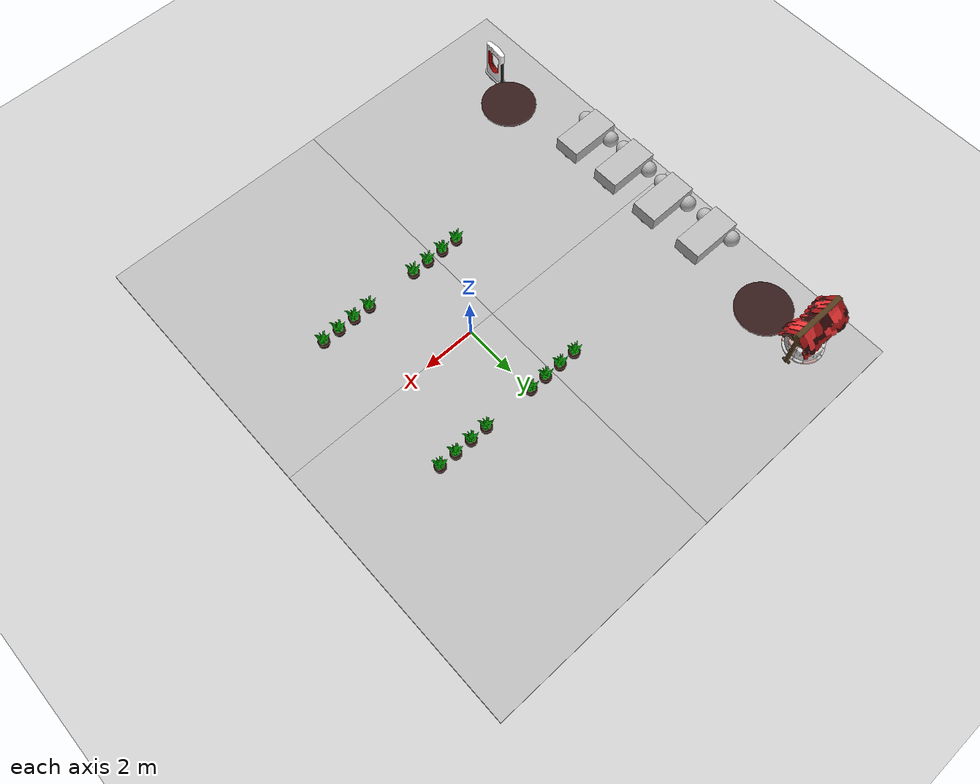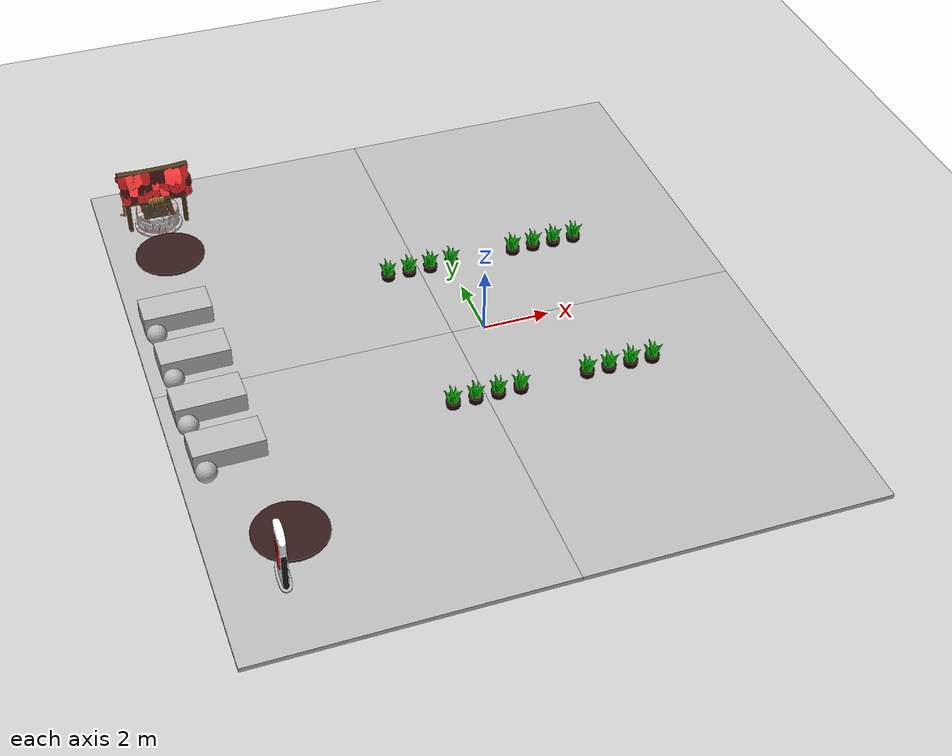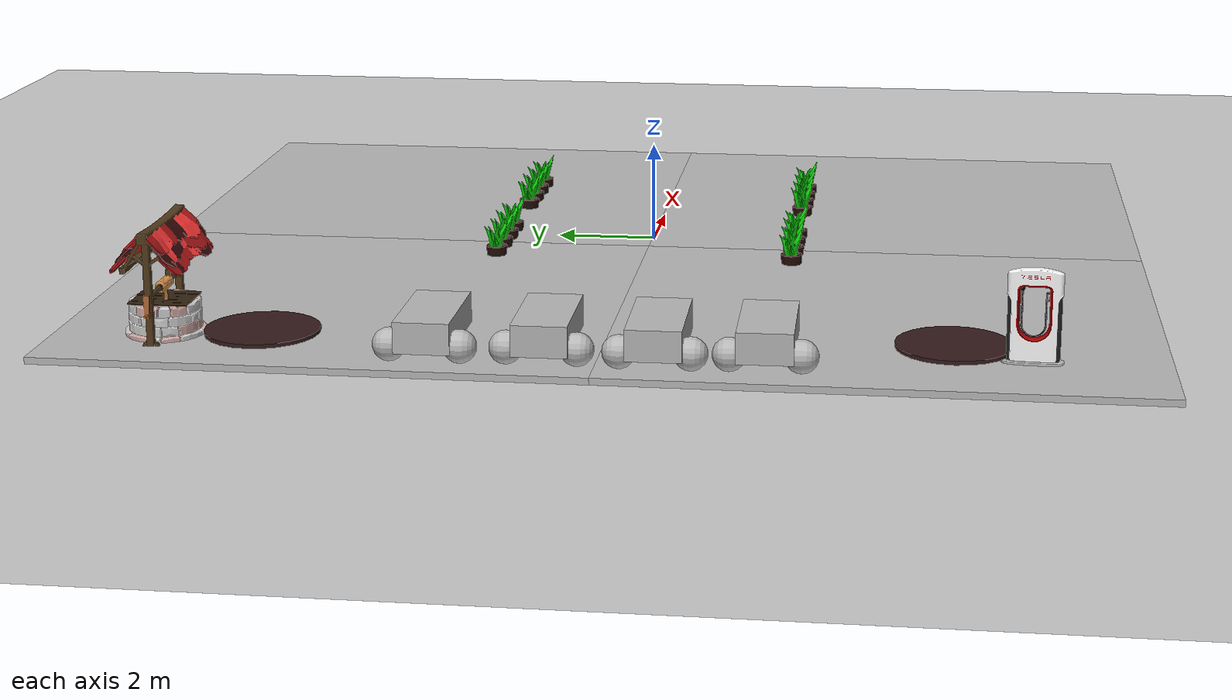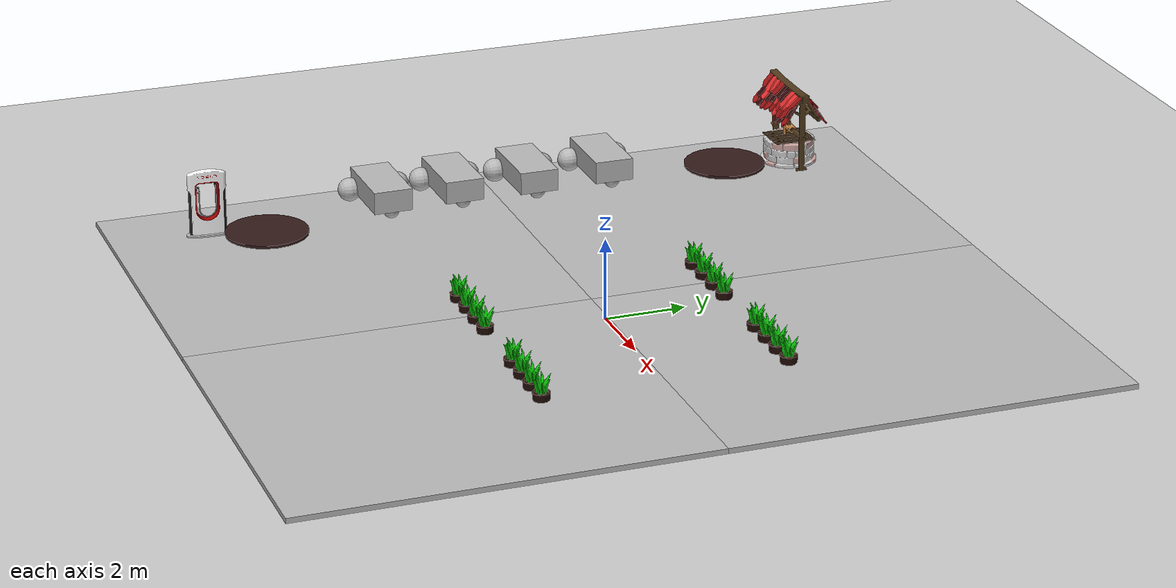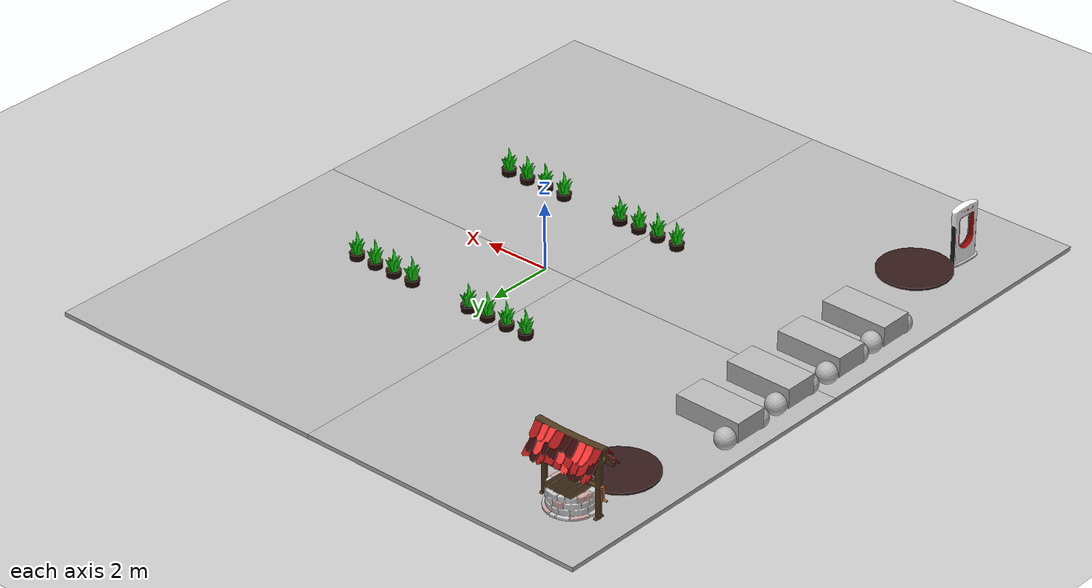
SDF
<sdf version="1.7">
 <world name="default">
  <model name="robot">
   <pose>-8.62766 2.96862 0.418664 0 0.006612 3.13792</pose>
   <link name="base_link">
    <pose>-0.151427 -0 0.175 0 -0 0</pose>
    <inertial>
     <mass>1.14395</mass>
     <inertia>
      <ixx>0.126164</ixx>
      <ixy>0</ixy>
      <ixz>0</ixz>
      <iyy>0.416519</iyy>
      <iyz>0</iyz>
      <izz>0.481014</izz>
     </inertia>
    </inertial>
    <visual name="visual"><geometry><box><size>2.01142 1 0.568726</size></box></geometry></visual>
    <collision name="collision"><geometry><box><size>2.01142 1 0.568726</size></box></geometry></collision>
   </link>
   <link name="left_wheel">
    <pose>0.554283 0.625029 -0.025 -1.5707 0 0</pose>
    <inertial>
     <mass>2</mass>
     <inertia><ixx>0.145833</ixx><ixy>0</ixy><ixz>0</ixz><iyy>0.145833</iyy><iyz>0</iyz><izz>0.125</izz></inertia>
    </inertial>
    <visual name="visual"><geometry><sphere><radius>0.3</radius></sphere></geometry></visual>
    <collision name="collision">
     <geometry><sphere><radius>0.3</radius></sphere></geometry>
     <surface>
      <friction><ode><mu>1</mu><mu2>1</mu2><slip1>0</slip1><slip2>0</slip2></ode></friction>
      <contact>
       <ode>
        <soft_cfm>0</soft_cfm>
        <soft_erp>0.2</soft_erp>
        <kp>1e+13</kp>
        <kd>1</kd>
        <max_vel>0.01</max_vel>
        <min_depth>0.01</min_depth>
       </ode>
      </contact>
     </surface>
    </collision>
   </link>
   <link name="right_wheel">
    <pose>0.554282 -0.625029 -0.025 -1.5707 0 0</pose>
    <inertial>
     <mass>2</mass>
     <inertia><ixx>0.145833</ixx><ixy>0</ixy><ixz>0</ixz><iyy>0.145833</iyy><iyz>0</iyz><izz>0.125</izz></inertia>
    </inertial>
    <visual name="visual"><geometry><sphere><radius>0.3</radius></sphere></geometry></visual>
    <collision name="collision">
     <geometry><sphere><radius>0.3</radius></sphere></geometry>
     <surface>
      <friction><ode><mu>1</mu><mu2>1</mu2><slip1>0</slip1><slip2>0</slip2></ode></friction>
      <contact>
       <ode>
        <soft_cfm>0</soft_cfm>
        <soft_erp>0.2</soft_erp>
        <kp>1e+13</kp>
        <kd>1</kd>
        <max_vel>0.01</max_vel>
        <min_depth>0.01</min_depth>
       </ode>
      </contact>
     </surface>
    </collision>
   </link>
   <link name="caster">
    <pose>-0.957138 -0 -0.125 0 -0 0</pose>
    <inertial>
     <mass>1</mass>
     <inertia><ixx>0.1</ixx><ixy>0</ixy><ixz>0</ixz><iyy>0.1</iyy><iyz>0</iyz><izz>0.1</izz></inertia>
    </inertial>
    <visual name="visual"><geometry><sphere><radius>0.2</radius></sphere></geometry></visual>
    <collision name="collision"><geometry><sphere><radius>0.2</radius></sphere></geometry></collision>
   </link>
   <joint name="left_wheel_joint" type="revolute">
    <parent>base_link</parent>
    <child>left_wheel</child>
    <axis>
     <xyz>0 0 1</xyz>
     <limit><lower>-1.79769e+308</lower><upper>1.79769e+308</upper></limit>
     <dynamics><spring_reference>0</spring_reference><spring_stiffness>0</spring_stiffness></dynamics>
    </axis>
   </joint>
   <joint name="right_wheel_joint" type="revolute">
    <parent>base_link</parent>
    <child>right_wheel</child>
    <axis>
     <xyz>0 0 1</xyz>
     <limit><lower>-1.79769e+308</lower><upper>1.79769e+308</upper></limit>
     <dynamics><spring_reference>0</spring_reference><spring_stiffness>0</spring_stiffness></dynamics>
    </axis>
   </joint>
   <joint name="caster_wheel" type="ball"><parent>base_link</parent><child>caster</child></joint>
   <plugin name="gazebo_ros_diff_drive" filename="libgazebo_ros_diff_drive.so">
    <ros><namespace>/</namespace><remapping>odom:=odom</remapping></ros>
    <publishOdomTf>1</publishOdomTf>
    <commandTopic>cmd_vel</commandTopic>
    <odometryTopic>odom</odometryTopic>
    <odometrySource>WORLD</odometrySource>
    <publish_odom>1</publish_odom>
    <robotBaseFrame>base_link</robotBaseFrame>
    <left_joint>left_wheel_joint</left_joint>
    <right_joint>right_wheel_joint</right_joint>
   </plugin>
  </model>
  <model name="robot2">
   <pose>-8.56768 0.922478 0.418666 0 0.006615 -3.13722</pose>
   <link name="base_link">
    <pose>-0.151427 -0 0.175 0 -0 0</pose>
    <inertial>
     <mass>1.14395</mass>
     <inertia>
      <ixx>0.126164</ixx>
      <ixy>0</ixy>
      <ixz>0</ixz>
      <iyy>0.416519</iyy>
      <iyz>0</iyz>
      <izz>0.481014</izz>
     </inertia>
    </inertial>
    <visual name="visual"><geometry><box><size>2.01142 1 0.568726</size></box></geometry></visual>
    <collision name="collision"><geometry><box><size>2.01142 1 0.568726</size></box></geometry></collision>
   </link>
   <link name="left_wheel">
    <pose>0.554283 0.625029 -0.025 -1.5707 0 0</pose>
    <inertial>
     <mass>2</mass>
     <inertia><ixx>0.145833</ixx><ixy>0</ixy><ixz>0</ixz><iyy>0.145833</iyy><iyz>0</iyz><izz>0.125</izz></inertia>
    </inertial>
    <visual name="visual"><geometry><sphere><radius>0.3</radius></sphere></geometry></visual>
    <collision name="collision">
     <geometry><sphere><radius>0.3</radius></sphere></geometry>
     <surface>
      <friction><ode><mu>1</mu><mu2>1</mu2><slip1>0</slip1><slip2>0</slip2></ode></friction>
      <contact>
       <ode>
        <soft_cfm>0</soft_cfm>
        <soft_erp>0.2</soft_erp>
        <kp>1e+13</kp>
        <kd>1</kd>
        <max_vel>0.01</max_vel>
        <min_depth>0.01</min_depth>
       </ode>
      </contact>
     </surface>
    </collision>
   </link>
   <link name="right_wheel">
    <pose>0.554282 -0.625029 -0.025 -1.5707 0 0</pose>
    <inertial>
     <mass>2</mass>
     <inertia><ixx>0.145833</ixx><ixy>0</ixy><ixz>0</ixz><iyy>0.145833</iyy><iyz>0</iyz><izz>0.125</izz></inertia>
    </inertial>
    <visual name="visual"><geometry><sphere><radius>0.3</radius></sphere></geometry></visual>
    <collision name="collision">
     <geometry><sphere><radius>0.3</radius></sphere></geometry>
     <surface>
      <friction><ode><mu>1</mu><mu2>1</mu2><slip1>0</slip1><slip2>0</slip2></ode></friction>
      <contact>
       <ode>
        <soft_cfm>0</soft_cfm>
        <soft_erp>0.2</soft_erp>
        <kp>1e+13</kp>
        <kd>1</kd>
        <max_vel>0.01</max_vel>
        <min_depth>0.01</min_depth>
       </ode>
      </contact>
     </surface>
    </collision>
   </link>
   <link name="caster">
    <pose>-0.957138 -0 -0.125 0 -0 0</pose>
    <inertial>
     <mass>1</mass>
     <inertia><ixx>0.1</ixx><ixy>0</ixy><ixz>0</ixz><iyy>0.1</iyy><iyz>0</iyz><izz>0.1</izz></inertia>
    </inertial>
    <visual name="visual"><geometry><sphere><radius>0.2</radius></sphere></geometry></visual>
    <collision name="collision"><geometry><sphere><radius>0.2</radius></sphere></geometry></collision>
   </link>
   <joint name="left_wheel_joint" type="revolute">
    <parent>base_link</parent>
    <child>left_wheel</child>
    <axis>
     <xyz>0 0 1</xyz>
     <limit><lower>-1.79769e+308</lower><upper>1.79769e+308</upper></limit>
     <dynamics><spring_reference>0</spring_reference><spring_stiffness>0</spring_stiffness></dynamics>
    </axis>
   </joint>
   <joint name="right_wheel_joint" type="revolute">
    <parent>base_link</parent>
    <child>right_wheel</child>
    <axis>
     <xyz>0 0 1</xyz>
     <limit><lower>-1.79769e+308</lower><upper>1.79769e+308</upper></limit>
     <dynamics><spring_reference>0</spring_reference><spring_stiffness>0</spring_stiffness></dynamics>
    </axis>
   </joint>
   <joint name="caster_wheel" type="ball"><parent>base_link</parent><child>caster</child></joint>
  </model>
  <model name="robot3">
   <pose>-8.59963 -1.05763 0.418666 0 0.006615 -3.13037</pose>
   <link name="base_link">
    <pose>-0.151427 -0 0.175 0 -0 0</pose>
    <inertial>
     <mass>1.14395</mass>
     <inertia>
      <ixx>0.126164</ixx>
      <ixy>0</ixy>
      <ixz>0</ixz>
      <iyy>0.416519</iyy>
      <iyz>0</iyz>
      <izz>0.481014</izz>
     </inertia>
    </inertial>
    <visual name="visual"><geometry><box><size>2.01142 1 0.568726</size></box></geometry></visual>
    <collision name="collision"><geometry><box><size>2.01142 1 0.568726</size></box></geometry></collision>
   </link>
   <link name="left_wheel">
    <pose>0.554283 0.625029 -0.025 -1.5707 0 0</pose>
    <inertial>
     <mass>2</mass>
     <inertia><ixx>0.145833</ixx><ixy>0</ixy><ixz>0</ixz><iyy>0.145833</iyy><iyz>0</iyz><izz>0.125</izz></inertia>
    </inertial>
    <visual name="visual"><geometry><sphere><radius>0.3</radius></sphere></geometry></visual>
    <collision name="collision">
     <geometry><sphere><radius>0.3</radius></sphere></geometry>
     <surface>
      <friction><ode><mu>1</mu><mu2>1</mu2><slip1>0</slip1><slip2>0</slip2></ode></friction>
      <contact>
       <ode>
        <soft_cfm>0</soft_cfm>
        <soft_erp>0.2</soft_erp>
        <kp>1e+13</kp>
        <kd>1</kd>
        <max_vel>0.01</max_vel>
        <min_depth>0.01</min_depth>
       </ode>
      </contact>
     </surface>
    </collision>
   </link>
   <link name="right_wheel">
    <pose>0.554282 -0.625029 -0.025 -1.5707 0 0</pose>
    <inertial>
     <mass>2</mass>
     <inertia><ixx>0.145833</ixx><ixy>0</ixy><ixz>0</ixz><iyy>0.145833</iyy><iyz>0</iyz><izz>0.125</izz></inertia>
    </inertial>
    <visual name="visual"><geometry><sphere><radius>0.3</radius></sphere></geometry></visual>
    <collision name="collision">
     <geometry><sphere><radius>0.3</radius></sphere></geometry>
     <surface>
      <friction><ode><mu>1</mu><mu2>1</mu2><slip1>0</slip1><slip2>0</slip2></ode></friction>
      <contact>
       <ode>
        <soft_cfm>0</soft_cfm>
        <soft_erp>0.2</soft_erp>
        <kp>1e+13</kp>
        <kd>1</kd>
        <max_vel>0.01</max_vel>
        <min_depth>0.01</min_depth>
       </ode>
      </contact>
     </surface>
    </collision>
   </link>
   <link name="caster">
    <pose>-0.957138 -0 -0.125 0 -0 0</pose>
    <inertial>
     <mass>1</mass>
     <inertia><ixx>0.1</ixx><ixy>0</ixy><ixz>0</ixz><iyy>0.1</iyy><iyz>0</iyz><izz>0.1</izz></inertia>
    </inertial>
    <visual name="visual"><geometry><sphere><radius>0.2</radius></sphere></geometry></visual>
    <collision name="collision"><geometry><sphere><radius>0.2</radius></sphere></geometry></collision>
   </link>
   <joint name="left_wheel_joint" type="revolute">
    <parent>base_link</parent>
    <child>left_wheel</child>
    <axis>
     <xyz>0 0 1</xyz>
     <limit><lower>-1.79769e+308</lower><upper>1.79769e+308</upper></limit>
     <dynamics><spring_reference>0</spring_reference><spring_stiffness>0</spring_stiffness></dynamics>
    </axis>
   </joint>
   <joint name="right_wheel_joint" type="revolute">
    <parent>base_link</parent>
    <child>right_wheel</child>
    <axis>
     <xyz>0 0 1</xyz>
     <limit><lower>-1.79769e+308</lower><upper>1.79769e+308</upper></limit>
     <dynamics><spring_reference>0</spring_reference><spring_stiffness>0</spring_stiffness></dynamics>
    </axis>
   </joint>
   <joint name="caster_wheel" type="ball"><parent>base_link</parent><child>caster</child></joint>
  </model>
  <model name="robot4">
   <pose>-8.5302 -2.96425 0.418666 0 0.006615 -3.13002</pose>
   <link name="base_link">
    <pose>-0.151427 -0 0.175 0 -0 0</pose>
    <inertial>
     <mass>1.14395</mass>
     <inertia>
      <ixx>0.126164</ixx>
      <ixy>0</ixy>
      <ixz>0</ixz>
      <iyy>0.416519</iyy>
      <iyz>0</iyz>
      <izz>0.481014</izz>
     </inertia>
    </inertial>
    <visual name="visual"><geometry><box><size>2.01142 1 0.568726</size></box></geometry></visual>
    <collision name="collision"><geometry><box><size>2.01142 1 0.568726</size></box></geometry></collision>
   </link>
   <link name="left_wheel">
    <pose>0.554283 0.625029 -0.025 -1.5707 0 0</pose>
    <inertial>
     <mass>2</mass>
     <inertia><ixx>0.145833</ixx><ixy>0</ixy><ixz>0</ixz><iyy>0.145833</iyy><iyz>0</iyz><izz>0.125</izz></inertia>
    </inertial>
    <visual name="visual"><geometry><sphere><radius>0.3</radius></sphere></geometry></visual>
    <collision name="collision">
     <geometry><sphere><radius>0.3</radius></sphere></geometry>
     <surface>
      <friction><ode><mu>1</mu><mu2>1</mu2><slip1>0</slip1><slip2>0</slip2></ode></friction>
      <contact>
       <ode>
        <soft_cfm>0</soft_cfm>
        <soft_erp>0.2</soft_erp>
        <kp>1e+13</kp>
        <kd>1</kd>
        <max_vel>0.01</max_vel>
        <min_depth>0.01</min_depth>
       </ode>
      </contact>
     </surface>
    </collision>
   </link>
   <link name="right_wheel">
    <pose>0.554282 -0.625029 -0.025 -1.5707 0 0</pose>
    <inertial>
     <mass>2</mass>
     <inertia><ixx>0.145833</ixx><ixy>0</ixy><ixz>0</ixz><iyy>0.145833</iyy><iyz>0</iyz><izz>0.125</izz></inertia>
    </inertial>
    <visual name="visual"><geometry><sphere><radius>0.3</radius></sphere></geometry></visual>
    <collision name="collision">
     <geometry><sphere><radius>0.3</radius></sphere></geometry>
     <surface>
      <friction><ode><mu>1</mu><mu2>1</mu2><slip1>0</slip1><slip2>0</slip2></ode></friction>
      <contact>
       <ode>
        <soft_cfm>0</soft_cfm>
        <soft_erp>0.2</soft_erp>
        <kp>1e+13</kp>
        <kd>1</kd>
        <max_vel>0.01</max_vel>
        <min_depth>0.01</min_depth>
       </ode>
      </contact>
     </surface>
    </collision>
   </link>
   <link name="caster">
    <pose>-0.957138 -0 -0.125 0 -0 0</pose>
    <inertial>
     <mass>1</mass>
     <inertia><ixx>0.1</ixx><ixy>0</ixy><ixz>0</ixz><iyy>0.1</iyy><iyz>0</iyz><izz>0.1</izz></inertia>
    </inertial>
    <visual name="visual"><geometry><sphere><radius>0.2</radius></sphere></geometry></visual>
    <collision name="collision"><geometry><sphere><radius>0.2</radius></sphere></geometry></collision>
   </link>
   <joint name="left_wheel_joint" type="revolute">
    <parent>base_link</parent>
    <child>left_wheel</child>
    <axis>
     <xyz>0 0 1</xyz>
     <limit><lower>-1.79769e+308</lower><upper>1.79769e+308</upper></limit>
     <dynamics><spring_reference>0</spring_reference><spring_stiffness>0</spring_stiffness></dynamics>
    </axis>
   </joint>
   <joint name="right_wheel_joint" type="revolute">
    <parent>base_link</parent>
    <child>right_wheel</child>
    <axis>
     <xyz>0 0 1</xyz>
     <limit><lower>-1.79769e+308</lower><upper>1.79769e+308</upper></limit>
     <dynamics><spring_reference>0</spring_reference><spring_stiffness>0</spring_stiffness></dynamics>
    </axis>
   </joint>
   <joint name="caster_wheel" type="ball"><parent>base_link</parent><child>caster</child></joint>
  </model>
  <model name="ground_plane">
   <static>1</static>
   <link name="link">
    <collision name="collision">
     <geometry><plane><normal>0 0 1</normal><size>100 100</size></plane></geometry>
     <surface><friction><ode><mu>100</mu><mu2>50</mu2></ode></friction></surface>
    </collision>
    <visual name="visual">
     <cast_shadows>0</cast_shadows>
     <geometry><plane><normal>0 0 1</normal><size>100 100</size></plane></geometry>
     <material>
      <script><uri>file://media/materials/scripts/gazebo.material</uri><name>Gazebo/Grey</name></script>
     </material>
    </visual>
   </link>
  </model>
  <light name="sun" type="directional">
   <pose>0 0 10 0 -0 0</pose>
   <diffuse>0.8 0.8 0.8 1</diffuse>
   <specular>0.2 0.2 0.2 1</specular>
   <attenuation>
    <range>1000</range>
    <constant>0.9</constant>
    <linear>0.01</linear>
    <quadratic>0.001</quadratic>
   </attenuation>
   <direction>-0.5 0.1 -0.9</direction>
   <spot><inner_angle>0</inner_angle><outer_angle>0</outer_angle><falloff>0</falloff></spot>
  </light>
  <gravity>0 0 -9.8</gravity>
  <magnetic_field>6e-06 2.3e-05 -4.2e-05</magnetic_field>
  <atmosphere type="adiabatic"/>
  <physics type="ode">
   <max_step_size>0.001</max_step_size>
   <real_time_factor>1</real_time_factor>
   <real_time_update_rate>1000</real_time_update_rate>
  </physics>
  <scene><ambient>0.4 0.4 0.4 1</ambient><background>0.7 0.7 0.7 1</background><shadows>1</shadows></scene>
  <audio><device>default</device></audio>
  <spherical_coordinates>
   <surface_model>EARTH_WGS84</surface_model>
   <latitude_deg>0</latitude_deg>
   <longitude_deg>0</longitude_deg>
   <elevation>0</elevation>
   <heading_deg>0</heading_deg>
  </spherical_coordinates>
  <model name="plant_1A">
   <pose>-2 -3 0 0 -0 0</pose>
   <static>1</static>
   <link name="link">
    <visual name="visual">
     <geometry>
      <mesh>
       <uri>file:///home/kyshima/gazebo_ws/src/plugins/models/plants/PotPlant.dae</uri>
       <scale>0.2 0.2 0.2</scale>
      </mesh>
     </geometry>
    </visual>
   </link>
  </model>
  <model name="plant_2A">
   <pose>2 -3 0 0 -0 0</pose>
   <static>1</static>
   <link name="link">
    <visual name="visual">
     <geometry>
      <mesh>
       <uri>file:///home/kyshima/gazebo_ws/src/plugins/models/plants/PotPlant.dae</uri>
       <scale>0.2 0.2 0.2</scale>
      </mesh>
     </geometry>
    </visual>
   </link>
  </model>
  <model name="plant_3A">
   <pose>-2 3 0 0 -0 0</pose>
   <static>1</static>
   <link name="link">
    <visual name="visual">
     <geometry>
      <mesh>
       <uri>file:///home/kyshima/gazebo_ws/src/plugins/models/plants/PotPlant.dae</uri>
       <scale>0.2 0.2 0.2</scale>
      </mesh>
     </geometry>
    </visual>
   </link>
  </model>
  <model name="plant_4A">
   <pose>2 3 0 0 -0 0</pose>
   <static>1</static>
   <link name="link">
    <visual name="visual">
     <geometry>
      <mesh>
       <uri>file:///home/kyshima/gazebo_ws/src/plugins/models/plants/PotPlant.dae</uri>
       <scale>0.2 0.2 0.2</scale>
      </mesh>
     </geometry>
    </visual>
   </link>
  </model>
  <model name="plant_1B">
   <pose>-1.333 -3 0 0 -0 0</pose>
   <static>1</static>
   <link name="link">
    <visual name="visual">
     <geometry>
      <mesh>
       <uri>file:///home/kyshima/gazebo_ws/src/plugins/models/plants/PotPlant.dae</uri>
       <scale>0.2 0.2 0.2</scale>
      </mesh>
     </geometry>
    </visual>
   </link>
  </model>
  <model name="plant_2B">
   <pose>2.667 -3 0 0 -0 0</pose>
   <static>1</static>
   <link name="link">
    <visual name="visual">
     <geometry>
      <mesh>
       <uri>file:///home/kyshima/gazebo_ws/src/plugins/models/plants/PotPlant.dae</uri>
       <scale>0.2 0.2 0.2</scale>
      </mesh>
     </geometry>
    </visual>
   </link>
  </model>
  <model name="plant_3B">
   <pose>-1.333 3 0 0 -0 0</pose>
   <static>1</static>
   <link name="link">
    <visual name="visual">
     <geometry>
      <mesh>
       <uri>file:///home/kyshima/gazebo_ws/src/plugins/models/plants/PotPlant.dae</uri>
       <scale>0.2 0.2 0.2</scale>
      </mesh>
     </geometry>
    </visual>
   </link>
  </model>
  <model name="plant_4B">
   <pose>2.667 3 0 0 -0 0</pose>
   <static>1</static>
   <link name="link">
    <visual name="visual">
     <geometry>
      <mesh>
       <uri>file:///home/kyshima/gazebo_ws/src/plugins/models/plants/PotPlant.dae</uri>
       <scale>0.2 0.2 0.2</scale>
      </mesh>
     </geometry>
    </visual>
   </link>
  </model>
  <model name="plant_1C">
   <pose>-0.667 -3 0 0 -0 0</pose>
   <static>1</static>
   <link name="link">
    <visual name="visual">
     <geometry>
      <mesh>
       <uri>file:///home/kyshima/gazebo_ws/src/plugins/models/plants/PotPlant.dae</uri>
       <scale>0.2 0.2 0.2</scale>
      </mesh>
     </geometry>
    </visual>
   </link>
  </model>
  <model name="plant_2C">
   <pose>3.333 -3 0 0 -0 0</pose>
   <static>1</static>
   <link name="link">
    <visual name="visual">
     <geometry>
      <mesh>
       <uri>file:///home/kyshima/gazebo_ws/src/plugins/models/plants/PotPlant.dae</uri>
       <scale>0.2 0.2 0.2</scale>
      </mesh>
     </geometry>
    </visual>
   </link>
  </model>
  <model name="plant_3C">
   <pose>-0.667 3 0 0 -0 0</pose>
   <static>1</static>
   <link name="link">
    <visual name="visual">
     <geometry>
      <mesh>
       <uri>file:///home/kyshima/gazebo_ws/src/plugins/models/plants/PotPlant.dae</uri>
       <scale>0.2 0.2 0.2</scale>
      </mesh>
     </geometry>
    </visual>
   </link>
  </model>
  <model name="plant_4C">
   <pose>3.333 3 0 0 -0 0</pose>
   <static>1</static>
   <link name="link">
    <visual name="visual">
     <geometry>
      <mesh>
       <uri>file:///home/kyshima/gazebo_ws/src/plugins/models/plants/PotPlant.dae</uri>
       <scale>0.2 0.2 0.2</scale>
      </mesh>
     </geometry>
    </visual>
   </link>
  </model>
  <model name="plant_1D">
   <pose>0 -3 0 0 -0 0</pose>
   <static>1</static>
   <link name="link">
    <visual name="visual">
     <geometry>
      <mesh>
       <uri>file:///home/kyshima/gazebo_ws/src/plugins/models/plants/PotPlant.dae</uri>
       <scale>0.2 0.2 0.2</scale>
      </mesh>
     </geometry>
    </visual>
   </link>
  </model>
  <model name="plant_2D">
   <pose>4 -3 0 0 -0 0</pose>
   <static>1</static>
   <link name="link">
    <visual name="visual">
     <geometry>
      <mesh>
       <uri>file:///home/kyshima/gazebo_ws/src/plugins/models/plants/PotPlant.dae</uri>
       <scale>0.2 0.2 0.2</scale>
      </mesh>
     </geometry>
    </visual>
   </link>
  </model>
  <model name="plant_3D">
   <pose>0 3 0 0 -0 0</pose>
   <static>1</static>
   <link name="link">
    <visual name="visual">
     <geometry>
      <mesh>
       <uri>file:///home/kyshima/gazebo_ws/src/plugins/models/plants/PotPlant.dae</uri>
       <scale>0.2 0.2 0.2</scale>
      </mesh>
     </geometry>
    </visual>
   </link>
  </model>
  <model name="plant_4D">
   <pose>4 3 0 0 -0 0</pose>
   <static>1</static>
   <link name="link">
    <visual name="visual">
     <geometry>
      <mesh>
       <uri>file:///home/kyshima/gazebo_ws/src/plugins/models/plants/PotPlant.dae</uri>
       <scale>0.2 0.2 0.2</scale>
      </mesh>
     </geometry>
    </visual>
   </link>
  </model>
  <model name="well">
   <static>1</static>
   <link name="link">
    <visual name="visual">
     <geometry>
      <mesh>
       <uri>file:///home/kyshima/gazebo_ws/src/plugins/models/well/well.dae</uri>
       <scale>0.1 0.1 0.1</scale>
      </mesh>
     </geometry>
    </visual>
   </link>
   <pose>-8 8 0 0 -0 0</pose>
  </model>
  <model name="mud">
   <static>1</static>
   <link name="link">
    <collision name="collision"><geometry><box><size>17.6 20 0.2</size></box></geometry></collision>
    <visual name="visual_1">
     <pose>-4.4 5 0 0 -0 0</pose>
     <cast_shadows>0</cast_shadows>
     <geometry><box><size>8.8 10 0.2</size></box></geometry>
     <material>
      <script>
       <uri>model://mud_box/materials/scripts</uri>
       <uri>model://mud_box/materials/textures</uri>
       <name>vrc/mud</name>
      </script>
     </material>
    </visual>
    <visual name="visual_2">
     <pose>4.4 5 0 0 -0 0</pose>
     <cast_shadows>0</cast_shadows>
     <geometry><box><size>8.8 10 0.2</size></box></geometry>
     <material>
      <script>
       <uri>model://mud_box/materials/scripts</uri>
       <uri>model://mud_box/materials/textures</uri>
       <name>vrc/mud</name>
      </script>
     </material>
    </visual>
    <visual name="visual_3">
     <pose>4.4 -5 0 0 -0 0</pose>
     <cast_shadows>0</cast_shadows>
     <geometry><box><size>8.8 10 0.2</size></box></geometry>
     <material>
      <script>
       <uri>model://mud_box/materials/scripts</uri>
       <uri>model://mud_box/materials/textures</uri>
       <name>vrc/mud</name>
      </script>
     </material>
    </visual>
    <visual name="visual_4">
     <pose>-4.4 -5 0 0 -0 0</pose>
     <cast_shadows>0</cast_shadows>
     <geometry><box><size>8.8 10 0.2</size></box></geometry>
     <material>
      <script>
       <uri>model://mud_box/materials/scripts</uri>
       <uri>model://mud_box/materials/textures</uri>
       <name>vrc/mud</name>
      </script>
     </material>
    </visual>
   </link>
   <pose>-1 0 0 0 -0 0</pose>
  </model>
  <model name="charger">
   <static>1</static>
   <link name="link">
    <visual name="visual">
     <geometry>
      <mesh>
       <uri>file:///home/kyshima/gazebo_ws/src/plugins/models/charger2/charger.dae</uri>
       <scale>1 1 1</scale>
      </mesh>
     </geometry>
    </visual>
   </link>
   <pose>-8.2 -7 0 0 0 -1.62417</pose>
  </model>
  <model name="outroBigCilindro">
   <link name="link">
    <inertial>
     <mass>1</mass>
     <inertia><ixx>0.145833</ixx><ixy>0</ixy><ixz>0</ixz><iyy>0.145833</iyy><iyz>0</iyz><izz>0.125</izz></inertia>
    </inertial>
    <visual name="visual">
     <geometry><cylinder><radius>1.04919</radius><length>0.0737919</length></cylinder></geometry>
     <material>
      <script><name>Gazebo/Grey</name><uri>file://media/materials/scripts/gazebo.material</uri></script>
      <shader type="pixel"><normal_map>__default__</normal_map></shader>
      <ambient>0.2 0.1 0.1 1</ambient>
      <diffuse>0.2 0.1 0.1 1</diffuse>
      <specular>0.2 0.11 0.11 1</specular>
      <emissive>0.2 0.1 0.1 1</emissive>
     </material>
    </visual>
    <collision name="collision">
     <geometry><cylinder><radius>1.04919</radius><length>0.073792</length></cylinder></geometry>
     <surface>
      <friction>
       <ode><mu>1</mu><mu2>1</mu2><fdir1>0 0 0</fdir1><slip1>0</slip1><slip2>0</slip2></ode>
       <torsional>
        <coefficient>1</coefficient>
        <patch_radius>0</patch_radius>
        <surface_radius>0</surface_radius>
        <use_patch_radius>1</use_patch_radius>
        <ode><slip>0</slip></ode>
       </torsional>
      </friction>
      <bounce><restitution_coefficient>0</restitution_coefficient><threshold>1e+06</threshold></bounce>
      <contact>
       <collide_without_contact>0</collide_without_contact>
       <collide_without_contact_bitmask>1</collide_without_contact_bitmask>
       <collide_bitmask>1</collide_bitmask>
       <ode>
        <soft_cfm>0</soft_cfm>
        <soft_erp>0.2</soft_erp>
        <kp>1e+13</kp>
        <kd>1</kd>
        <max_vel>0.01</max_vel>
        <min_depth>0</min_depth>
       </ode>
       <bullet>
        <split_impulse>1</split_impulse>
        <split_impulse_penetration_threshold>-0.01</split_impulse_penetration_threshold>
        <soft_cfm>0</soft_cfm>
        <soft_erp>0.2</soft_erp>
        <kp>1e+13</kp>
        <kd>1</kd>
       </bullet>
      </contact>
     </surface>
    </collision>
   </link>
   <static>0</static>
   <pose>-8 6.2 0.19837 4e-06 4e-06 -0</pose>
  </model>
  <model name="outroBigCilindro_clone">
   <link name="link">
    <inertial>
     <mass>1</mass>
     <inertia><ixx>0.145833</ixx><ixy>0</ixy><ixz>0</ixz><iyy>0.145833</iyy><iyz>0</iyz><izz>0.125</izz></inertia>
    </inertial>
    <visual name="visual">
     <geometry><cylinder><radius>1.04919</radius><length>0.0737919</length></cylinder></geometry>
     <material>
      <script><name>Gazebo/Grey</name><uri>file://media/materials/scripts/gazebo.material</uri></script>
      <shader type="pixel"><normal_map>__default__</normal_map></shader>
      <ambient>0.2 0.1 0.1 1</ambient>
      <diffuse>0.2 0.1 0.1 1</diffuse>
      <specular>0.2 0.11 0.11 1</specular>
      <emissive>0.2 0.1 0.1 1</emissive>
     </material>
    </visual>
    <collision name="collision">
     <geometry><cylinder><radius>1.04919</radius><length>0.073792</length></cylinder></geometry>
     <surface>
      <friction>
       <ode><mu>1</mu><mu2>1</mu2><fdir1>0 0 0</fdir1><slip1>0</slip1><slip2>0</slip2></ode>
       <torsional>
        <coefficient>1</coefficient>
        <patch_radius>0</patch_radius>
        <surface_radius>0</surface_radius>
        <use_patch_radius>1</use_patch_radius>
        <ode><slip>0</slip></ode>
       </torsional>
      </friction>
      <bounce><restitution_coefficient>0</restitution_coefficient><threshold>1e+06</threshold></bounce>
      <contact>
       <collide_without_contact>0</collide_without_contact>
       <collide_without_contact_bitmask>1</collide_without_contact_bitmask>
       <collide_bitmask>1</collide_bitmask>
       <ode>
        <soft_cfm>0</soft_cfm>
        <soft_erp>0.2</soft_erp>
        <kp>1e+13</kp>
        <kd>1</kd>
        <max_vel>0.01</max_vel>
        <min_depth>0</min_depth>
       </ode>
       <bullet>
        <split_impulse>1</split_impulse>
        <split_impulse_penetration_threshold>-0.01</split_impulse_penetration_threshold>
        <soft_cfm>0</soft_cfm>
        <soft_erp>0.2</soft_erp>
        <kp>1e+13</kp>
        <kd>1</kd>
       </bullet>
      </contact>
     </surface>
    </collision>
   </link>
   <static>0</static>
   <pose>-7.5 -6.2 0.19837 4e-06 4e-06 -0</pose>
  </model>
 </world>
</sdf>
